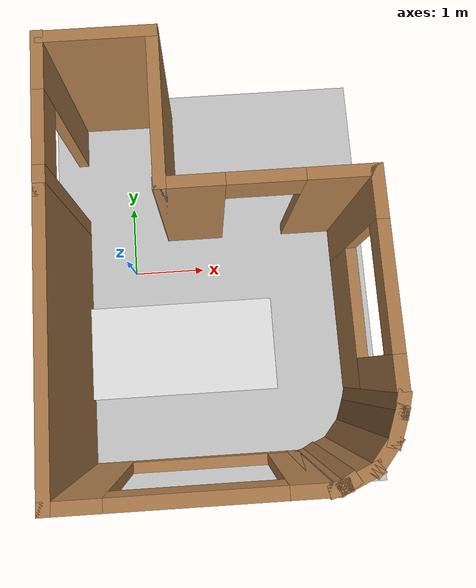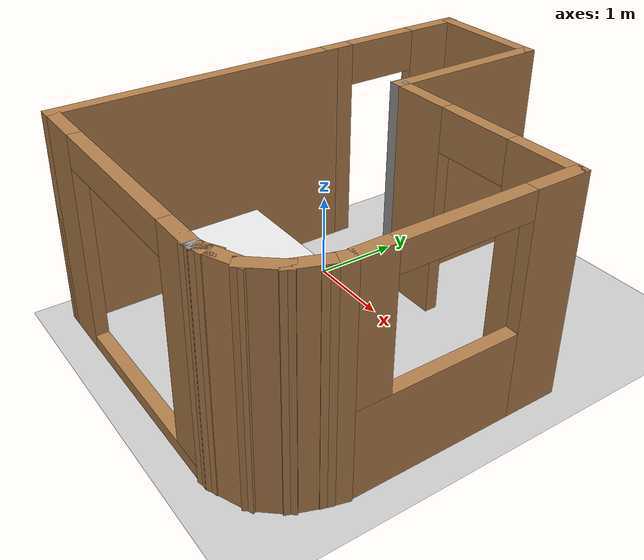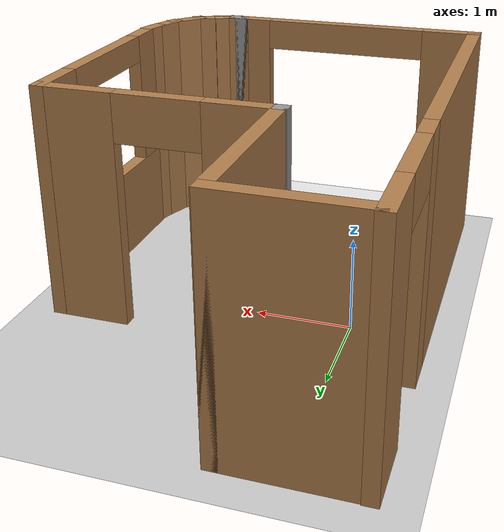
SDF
<sdf version="1.7">
 <world name="default">
  <light name="sun" type="directional">
   <pose>0 0 10 0 -0 0</pose>
   <diffuse>0.8 0.8 0.8 1</diffuse>
   <specular>0.2 0.2 0.2 1</specular>
   <attenuation>
    <range>1000</range>
    <constant>0.9</constant>
    <linear>0.01</linear>
    <quadratic>0.001</quadratic>
   </attenuation>
   <direction>-0.5 0.1 -0.9</direction>
   <spot><inner_angle>0</inner_angle><outer_angle>0</outer_angle><falloff>0</falloff></spot>
  </light>
  <model name="ground_plane">
   <static>1</static>
   <link name="link">
    <collision name="collision">
     <geometry><plane><normal>0 0 1</normal><size>100 100</size></plane></geometry>
     <surface>
      <contact><collide_bitmask>65535</collide_bitmask></contact>
      <friction><ode><mu>100</mu><mu2>50</mu2></ode></friction>
     </surface>
    </collision>
    <visual name="visual">
     <cast_shadows>0</cast_shadows>
     <geometry><plane><normal>0 0 1</normal><size>100 100</size></plane></geometry>
     <material>
      <script><uri>file://media/materials/scripts/gazebo.material</uri><name>Gazebo/Grey</name></script>
     </material>
    </visual>
   </link>
  </model>
  <gravity>0 0 -9.8</gravity>
  <magnetic_field>6e-06 2.3e-05 -4.2e-05</magnetic_field>
  <atmosphere type="adiabatic"/>
  <physics type="ode">
   <max_step_size>0.001</max_step_size>
   <real_time_factor>1</real_time_factor>
   <real_time_update_rate>1000</real_time_update_rate>
  </physics>
  <scene><ambient>0.4 0.4 0.4 1</ambient><background>0.7 0.7 0.7 1</background><shadows>1</shadows></scene>
  <spherical_coordinates>
   <surface_model>EARTH_WGS84</surface_model>
   <latitude_deg>0</latitude_deg>
   <longitude_deg>0</longitude_deg>
   <elevation>0</elevation>
   <heading_deg>0</heading_deg>
  </spherical_coordinates>
  <model name="hardwareroom">
   <pose>1.14273 0.26414 0 0 -0 0</pose>
   <link name="Wall_1">
    <collision name="Wall_1_Collision">
     <geometry><box><size>1.42085 0.15 2.5</size></box></geometry>
     <pose>0 0 1.25 0 -0 0</pose>
    </collision>
    <visual name="Wall_1_Visual">
     <pose>0 0 1.25 0 -0 0</pose>
     <geometry><box><size>1.42085 0.15 2.5</size></box></geometry>
     <material>
      <script><uri>file://media/materials/scripts/gazebo.material</uri><name>Gazebo/Wood</name></script>
      <ambient>1 1 1 1</ambient>
     </material>
     <meta><layer>0</layer></meta>
    </visual>
    <pose>-1.20151 2.14616 0 0 -0 0</pose>
   </link>
   <link name="Wall_18">
    <collision name="Wall_18_Collision">
     <geometry><box><size>0.15 0.15 2.5</size></box></geometry>
     <pose>0 0 1.25 0 -0 0</pose>
    </collision>
    <visual name="Wall_18_Visual">
     <pose>0 0 1.25 0 -0 0</pose>
     <geometry><box><size>0.15 0.15 2.5</size></box></geometry>
     <material>
      <script><uri>file://media/materials/scripts/gazebo.material</uri><name>Gazebo/Grey</name></script>
      <ambient>1 1 1 1</ambient>
     </material>
     <meta><layer>0</layer></meta>
    </visual>
    <pose>-0.566086 0.296158 0 0 -0 0</pose>
   </link>
   <link name="Wall_2">
    <collision name="Wall_2_Collision">
     <geometry><box><size>2 0.15 2.5</size></box></geometry>
     <pose>0 0 1.25 0 -0 0</pose>
    </collision>
    <visual name="Wall_2_Visual">
     <pose>0 0 1.25 0 -0 0</pose>
     <geometry><box><size>2 0.15 2.5</size></box></geometry>
     <material>
      <script><uri>file://media/materials/scripts/gazebo.material</uri><name>Gazebo/Wood</name></script>
      <ambient>1 1 1 1</ambient>
     </material>
     <meta><layer>0</layer></meta>
    </visual>
    <pose>-0.557291 1.22116 0 0 -0 -1.5708</pose>
   </link>
   <link name="Wall_20">
    <pose>0.652888 0.296158 0 0 -0 0</pose>
    <visual name="Wall_20_Visual_0">
     <pose>-0.879506 0 1.25 0 -0 0</pose>
     <geometry><box><size>0.811346 0.15 2.5</size></box></geometry>
     <material>
      <script><uri>file://media/materials/scripts/gazebo.material</uri><name>Gazebo/Wood</name></script>
      <ambient>1 1 1 1</ambient>
     </material>
     <meta><layer>0</layer></meta>
    </visual>
    <collision name="Wall_20_Collision_0">
     <geometry><box><size>0.811346 0.15 2.5</size></box></geometry>
     <pose>-0.879506 0 1.25 0 -0 0</pose>
    </collision>
    <visual name="Wall_20_Visual_1">
     <pose>0.855673 0 1.25 0 -0 0</pose>
     <geometry><box><size>0.859012 0.15 2.5</size></box></geometry>
     <material>
      <script><uri>file://media/materials/scripts/gazebo.material</uri><name>Gazebo/Wood</name></script>
      <ambient>1 1 1 1</ambient>
     </material>
     <meta><layer>0</layer></meta>
    </visual>
    <collision name="Wall_20_Collision_1">
     <geometry><box><size>0.859012 0.15 2.5</size></box></geometry>
     <pose>0.855673 0 1.25 0 -0 0</pose>
    </collision>
    <visual name="Wall_20_Visual_2">
     <pose>-0.023833 0 2.25 0 -0 0</pose>
     <geometry><box><size>0.9 0.15 0.5</size></box></geometry>
     <material>
      <script><uri>file://media/materials/scripts/gazebo.material</uri><name>Gazebo/Wood</name></script>
      <ambient>1 1 1 1</ambient>
     </material>
     <meta><layer>0</layer></meta>
    </visual>
    <collision name="Wall_20_Collision_2">
     <geometry><box><size>0.9 0.15 0.5</size></box></geometry>
     <pose>-0.023833 0 2.25 0 -0 0</pose>
    </collision>
   </link>
   <link name="Wall_22">
    <collision name="Wall_22_Collision">
     <geometry><box><size>3.5 0.15 2.5</size></box></geometry>
     <pose>0 0 1.25 0 -0 0</pose>
    </collision>
    <visual name="Wall_22_Visual">
     <pose>0 0 1.25 0 -0 0</pose>
     <geometry><box><size>3.5 0.15 2.5</size></box></geometry>
     <material>
      <script><uri>file://media/materials/scripts/gazebo.material</uri><name>Gazebo/Wood</name></script>
      <ambient>1 1 1 1</ambient>
     </material>
     <meta><layer>0</layer></meta>
    </visual>
    <pose>-1.88807 -1.3693 0 0 -0 -1.5708</pose>
   </link>
   <link name="Wall_23">
    <pose>-0.463066 -3.0443 0 0 -0 0</pose>
    <visual name="Wall_23_Visual_0">
     <pose>-1.16393 0 1.25 0 -0 0</pose>
     <geometry><box><size>0.672133 0.15 2.5</size></box></geometry>
     <material>
      <script><uri>file://media/materials/scripts/gazebo.material</uri><name>Gazebo/Wood</name></script>
      <ambient>1 1 1 1</ambient>
     </material>
     <meta><layer>0</layer></meta>
    </visual>
    <collision name="Wall_23_Collision_0">
     <geometry><box><size>0.672133 0.15 2.5</size></box></geometry>
     <pose>-1.16393 0 1.25 0 -0 0</pose>
    </collision>
    <visual name="Wall_23_Visual_1">
     <pose>0.336066 0 0.075 0 -0 0</pose>
     <geometry><box><size>2.32787 0.15 0.15</size></box></geometry>
     <material>
      <script><uri>file://media/materials/scripts/gazebo.material</uri><name>Gazebo/Wood</name></script>
      <ambient>1 1 1 1</ambient>
     </material>
     <meta><layer>0</layer></meta>
    </visual>
    <collision name="Wall_23_Collision_1">
     <geometry><box><size>2.32787 0.15 0.15</size></box></geometry>
     <pose>0.336066 0 0.075 0 -0 0</pose>
    </collision>
    <visual name="Wall_23_Visual_2">
     <pose>1.28107 0 1.325 0 -0 0</pose>
     <geometry><box><size>0.437867 0.15 2.35</size></box></geometry>
     <material>
      <script><uri>file://media/materials/scripts/gazebo.material</uri><name>Gazebo/Wood</name></script>
      <ambient>1 1 1 1</ambient>
     </material>
     <meta><layer>0</layer></meta>
    </visual>
    <collision name="Wall_23_Collision_2">
     <geometry><box><size>0.437867 0.15 2.35</size></box></geometry>
     <pose>1.28107 0 1.325 0 -0 0</pose>
    </collision>
    <visual name="Wall_23_Visual_3">
     <pose>0.117133 0 2.325 0 -0 0</pose>
     <geometry><box><size>1.89 0.15 0.35</size></box></geometry>
     <material>
      <script><uri>file://media/materials/scripts/gazebo.material</uri><name>Gazebo/Wood</name></script>
      <ambient>1 1 1 1</ambient>
     </material>
     <meta><layer>0</layer></meta>
    </visual>
    <collision name="Wall_23_Collision_3">
     <geometry><box><size>1.89 0.15 0.35</size></box></geometry>
     <pose>0.117133 0 2.325 0 -0 0</pose>
    </collision>
   </link>
   <link name="Wall_26">
    <collision name="Wall_26_Collision">
     <geometry><box><size>0.25 0.15 2.5</size></box></geometry>
     <pose>0 0 1.25 0 -0 0</pose>
    </collision>
    <visual name="Wall_26_Visual">
     <pose>0 0 1.25 0 -0 0</pose>
     <geometry><box><size>0.25 0.15 2.5</size></box></geometry>
     <material>
      <script><uri>file://media/materials/scripts/gazebo.material</uri><name>Gazebo/Grey</name></script>
      <ambient>1 1 1 1</ambient>
     </material>
     <meta><layer>0</layer></meta>
    </visual>
    <pose>1.01193 -3.0443 0 0 -0 0</pose>
   </link>
   <link name="Wall_27">
    <collision name="Wall_27_Collision">
     <geometry><box><size>0.25 0.15 2.5</size></box></geometry>
     <pose>0 0 1.25 0 -0 0</pose>
    </collision>
    <visual name="Wall_27_Visual">
     <pose>0 0 1.25 0 -0 0</pose>
     <geometry><box><size>0.25 0.15 2.5</size></box></geometry>
     <material>
      <script><uri>file://media/materials/scripts/gazebo.material</uri><name>Gazebo/Wood</name></script>
      <ambient>1 1 1 1</ambient>
     </material>
     <meta><layer>0</layer></meta>
    </visual>
    <pose>1.01193 -3.0443 0 0 -0 3.14159</pose>
   </link>
   <link name="Wall_29">
    <collision name="Wall_29_Collision">
     <geometry><box><size>0.25 0.15 2.5</size></box></geometry>
     <pose>0 0 1.25 0 -0 0</pose>
    </collision>
    <visual name="Wall_29_Visual">
     <pose>0 0 1.25 0 -0 0</pose>
     <geometry><box><size>0.25 0.15 2.5</size></box></geometry>
     <material>
      <script><uri>file://media/materials/scripts/gazebo.material</uri><name>Gazebo/Wood</name></script>
      <ambient>1 1 1 1</ambient>
     </material>
     <meta><layer>0</layer></meta>
    </visual>
    <pose>1.11023 -3.03136 0 0 -0 0.261799</pose>
   </link>
   <link name="Wall_33">
    <collision name="Wall_33_Collision">
     <geometry><box><size>0.25 0.15 2.5</size></box></geometry>
     <pose>0 0 1.25 0 -0 0</pose>
    </collision>
    <visual name="Wall_33_Visual">
     <pose>0 0 1.25 0 -0 0</pose>
     <geometry><box><size>0.25 0.15 2.5</size></box></geometry>
     <material>
      <script><uri>file://media/materials/scripts/gazebo.material</uri><name>Gazebo/Wood</name></script>
      <ambient>1 1 1 1</ambient>
     </material>
     <meta><layer>0</layer></meta>
    </visual>
    <pose>1.20183 -2.99342 0 0 -0 0.523599</pose>
   </link>
   <link name="Wall_37">
    <collision name="Wall_37_Collision">
     <geometry><box><size>0.522094 0.15 2.5</size></box></geometry>
     <pose>0 0 1.25 0 -0 0</pose>
    </collision>
    <visual name="Wall_37_Visual">
     <pose>0 0 1.25 0 -0 0</pose>
     <geometry><box><size>0.522094 0.15 2.5</size></box></geometry>
     <material>
      <script><uri>file://media/materials/scripts/gazebo.material</uri><name>Gazebo/Wood</name></script>
      <ambient>1 1 1 1</ambient>
     </material>
     <meta><layer>0</layer></meta>
    </visual>
    <pose>1.3296 -2.94529 0 0 -0 -2.73763</pose>
   </link>
   <link name="Wall_39">
    <collision name="Wall_39_Collision">
     <geometry><box><size>0.484614 0.15 2.5</size></box></geometry>
     <pose>0 0 1.25 0 -0 0</pose>
    </collision>
    <visual name="Wall_39_Visual">
     <pose>0 0 1.25 0 -0 0</pose>
     <geometry><box><size>0.484614 0.15 2.5</size></box></geometry>
     <material>
      <script><uri>file://media/materials/scripts/gazebo.material</uri><name>Gazebo/Wood</name></script>
      <ambient>1 1 1 1</ambient>
     </material>
     <meta><layer>0</layer></meta>
    </visual>
    <pose>1.60767 -2.74354 0 0 -0 -2.26471</pose>
   </link>
   <link name="Wall_41">
    <collision name="Wall_41_Collision">
     <geometry><box><size>0.457143 0.15 2.5</size></box></geometry>
     <pose>0 0 1.25 0 -0 0</pose>
    </collision>
    <visual name="Wall_41_Visual">
     <pose>0 0 1.25 0 -0 0</pose>
     <geometry><box><size>0.457143 0.15 2.5</size></box></geometry>
     <material>
      <script><uri>file://media/materials/scripts/gazebo.material</uri><name>Gazebo/Wood</name></script>
      <ambient>1 1 1 1</ambient>
     </material>
     <meta><layer>0</layer></meta>
    </visual>
    <pose>1.76871 -2.47118 0 0 -0 -1.93039</pose>
   </link>
   <link name="Wall_45">
    <collision name="Wall_45_Collision">
     <geometry><box><size>0.302406 0.15 2.5</size></box></geometry>
     <pose>0 0 1.25 0 -0 0</pose>
    </collision>
    <visual name="Wall_45_Visual">
     <pose>0 0 1.25 0 -0 0</pose>
     <geometry><box><size>0.302406 0.15 2.5</size></box></geometry>
     <material>
      <script><uri>file://media/materials/scripts/gazebo.material</uri><name>Gazebo/Wood</name></script>
      <ambient>1 1 1 1</ambient>
     </material>
     <meta><layer>0</layer></meta>
    </visual>
    <pose>1.84289 -2.25393 0 0 -0 1.30344</pose>
   </link>
   <link name="Wall_47">
    <pose>-1.88807 1.2307 0 0 -0 1.5708</pose>
    <visual name="Wall_47_Visual_0">
     <pose>-0.817654 0 1.25 0 -0 0</pose>
     <geometry><box><size>0.364692 0.15 2.5</size></box></geometry>
     <material>
      <script><uri>file://media/materials/scripts/gazebo.material</uri><name>Gazebo/Wood</name></script>
      <ambient>1 1 1 1</ambient>
     </material>
     <meta><layer>0</layer></meta>
    </visual>
    <collision name="Wall_47_Collision_0">
     <geometry><box><size>0.364692 0.15 2.5</size></box></geometry>
     <pose>-0.817654 0 1.25 0 -0 0</pose>
    </collision>
    <visual name="Wall_47_Visual_1">
     <pose>0.632346 0 1.25 0 -0 0</pose>
     <geometry><box><size>0.735308 0.15 2.5</size></box></geometry>
     <material>
      <script><uri>file://media/materials/scripts/gazebo.material</uri><name>Gazebo/Wood</name></script>
      <ambient>1 1 1 1</ambient>
     </material>
     <meta><layer>0</layer></meta>
    </visual>
    <collision name="Wall_47_Collision_1">
     <geometry><box><size>0.735308 0.15 2.5</size></box></geometry>
     <pose>0.632346 0 1.25 0 -0 0</pose>
    </collision>
    <visual name="Wall_47_Visual_2">
     <pose>-0.185308 0 2.25 0 -0 0</pose>
     <geometry><box><size>0.9 0.15 0.5</size></box></geometry>
     <material>
      <script><uri>file://media/materials/scripts/gazebo.material</uri><name>Gazebo/Wood</name></script>
      <ambient>1 1 1 1</ambient>
     </material>
     <meta><layer>0</layer></meta>
    </visual>
    <collision name="Wall_47_Collision_2">
     <geometry><box><size>0.9 0.15 0.5</size></box></geometry>
     <pose>-0.185308 0 2.25 0 -0 0</pose>
    </collision>
   </link>
   <link name="Wall_7">
    <pose>1.86307 -0.878842 0 0 -0 -1.5708</pose>
    <visual name="Wall_7_Visual_0">
     <pose>-0.930426 0 1.25 0 -0 0</pose>
     <geometry><box><size>0.639757 0.15 2.5</size></box></geometry>
     <material>
      <script><uri>file://media/materials/scripts/gazebo.material</uri><name>Gazebo/Wood</name></script>
      <ambient>1 1 1 1</ambient>
     </material>
     <meta><layer>0</layer></meta>
    </visual>
    <collision name="Wall_7_Collision_0">
     <geometry><box><size>0.639757 0.15 2.5</size></box></geometry>
     <pose>-0.930426 0 1.25 0 -0 0</pose>
    </collision>
    <visual name="Wall_7_Visual_1">
     <pose>0.319878 0 0.5 0 -0 0</pose>
     <geometry><box><size>1.86085 0.15 1</size></box></geometry>
     <material>
      <script><uri>file://media/materials/scripts/gazebo.material</uri><name>Gazebo/Wood</name></script>
      <ambient>1 1 1 1</ambient>
     </material>
     <meta><layer>0</layer></meta>
    </visual>
    <collision name="Wall_7_Collision_1">
     <geometry><box><size>1.86085 0.15 1</size></box></geometry>
     <pose>0.319878 0 0.5 0 -0 0</pose>
    </collision>
    <visual name="Wall_7_Visual_2">
     <pose>1.05338 0 1.75 0 -0 0</pose>
     <geometry><box><size>0.393852 0.15 1.5</size></box></geometry>
     <material>
      <script><uri>file://media/materials/scripts/gazebo.material</uri><name>Gazebo/Wood</name></script>
      <ambient>1 1 1 1</ambient>
     </material>
     <meta><layer>0</layer></meta>
    </visual>
    <collision name="Wall_7_Collision_2">
     <geometry><box><size>0.393852 0.15 1.5</size></box></geometry>
     <pose>1.05338 0 1.75 0 -0 0</pose>
    </collision>
    <visual name="Wall_7_Visual_3">
     <pose>0.122952 0 2.35 0 -0 0</pose>
     <geometry><box><size>1.467 0.15 0.3</size></box></geometry>
     <material>
      <script><uri>file://media/materials/scripts/gazebo.material</uri><name>Gazebo/Wood</name></script>
      <ambient>1 1 1 1</ambient>
     </material>
     <meta><layer>0</layer></meta>
    </visual>
    <collision name="Wall_7_Collision_3">
     <geometry><box><size>1.467 0.15 0.3</size></box></geometry>
     <pose>0.122952 0 2.35 0 -0 0</pose>
    </collision>
   </link>
   <static>1</static>
  </model>
  <model name="Table_office">
   <link name="link_0">
    <inertial>
     <mass>1</mass>
     <inertia>
      <ixx>0.166667</ixx>
      <ixy>0</ixy>
      <ixz>0</ixz>
      <iyy>0.166667</iyy>
      <iyz>0</iyz>
      <izz>0.166667</izz>
     </inertia>
    </inertial>
    <visual name="ModelPreview_3::link_0::visual_2">
     <pose>1 0 0 0 -0 0</pose>
     <geometry><box><size>0.05 0.8 0.75</size></box></geometry>
     <material>
      <lighting>1</lighting>
      <script><uri>file://media/materials/scripts/gazebo.material</uri><name>Gazebo/Black</name></script>
      <shader type="pixel"><normal_map>__default__</normal_map></shader>
      <ambient>0.3 0.3 0.3 1</ambient>
      <diffuse>0.7 0.7 0.7 1</diffuse>
      <specular>0.01 0.01 0.01 1</specular>
      <emissive>0 0 0 1</emissive>
     </material>
    </visual>
    <visual name="visual">
     <geometry><box><size>2 0.05 0.75</size></box></geometry>
     <material>
      <lighting>1</lighting>
      <script><uri>file://media/materials/scripts/gazebo.material</uri><name>Gazebo/Black</name></script>
      <shader type="pixel"><normal_map>__default__</normal_map></shader>
      <ambient>0.3 0.3 0.3 1</ambient>
      <diffuse>0.7 0.7 0.7 1</diffuse>
      <specular>0.01 0.01 0.01 1</specular>
      <emissive>0 0 0 1</emissive>
     </material>
    </visual>
    <visual name="ModelPreview_3::link_0::visual_3">
     <pose>-1 0 0 0 -0 0</pose>
     <geometry><box><size>0.05 0.8 0.75</size></box></geometry>
     <material>
      <lighting>1</lighting>
      <script><uri>file://media/materials/scripts/gazebo.material</uri><name>Gazebo/Black</name></script>
      <shader type="pixel"><normal_map>__default__</normal_map></shader>
      <ambient>0.3 0.3 0.3 1</ambient>
      <diffuse>0.7 0.7 0.7 1</diffuse>
      <specular>0.01 0.01 0.01 1</specular>
      <emissive>0 0 0 1</emissive>
     </material>
    </visual>
    <visual name="ModelPreview_3::link_0::visual_5">
     <pose>0 0 0.39 0 -0 0</pose>
     <geometry><box><size>2.44 1.21 0.05</size></box></geometry>
     <material>
      <lighting>1</lighting>
      <script><uri>file://media/materials/scripts/gazebo.material</uri><name>Gazebo/White</name></script>
      <shader type="pixel"><normal_map>__default__</normal_map></shader>
      <ambient>0.3 0.3 0.3 1</ambient>
      <diffuse>0.7 0.7 0.7 1</diffuse>
      <specular>0.01 0.01 0.01 1</specular>
      <emissive>0 0 0 1</emissive>
     </material>
    </visual>
    <collision name="collision_3">
     <pose>0 0 0.39 0 -0 0</pose>
     <geometry><box><size>2.44 1.21 0.05</size></box></geometry>
     <surface>
      <friction>
       <ode><mu>1</mu><mu2>1</mu2><fdir1>0 0 0</fdir1><slip1>0</slip1><slip2>0</slip2></ode>
       <torsional>
        <coefficient>1</coefficient>
        <patch_radius>0</patch_radius>
        <surface_radius>0</surface_radius>
        <use_patch_radius>1</use_patch_radius>
        <ode><slip>0</slip></ode>
       </torsional>
      </friction>
      <bounce><restitution_coefficient>0</restitution_coefficient><threshold>1e+06</threshold></bounce>
      <contact>
       <collide_without_contact>0</collide_without_contact>
       <collide_without_contact_bitmask>1</collide_without_contact_bitmask>
       <collide_bitmask>1</collide_bitmask>
       <ode>
        <soft_cfm>0</soft_cfm>
        <soft_erp>0.2</soft_erp>
        <kp>1e+13</kp>
        <kd>1</kd>
        <max_vel>0.01</max_vel>
        <min_depth>0</min_depth>
       </ode>
       <bullet>
        <split_impulse>1</split_impulse>
        <split_impulse_penetration_threshold>-0.01</split_impulse_penetration_threshold>
        <soft_cfm>0</soft_cfm>
        <soft_erp>0.2</soft_erp>
        <kp>1e+13</kp>
        <kd>1</kd>
       </bullet>
      </contact>
     </surface>
    </collision>
    <collision name="collision">
     <geometry><box><size>2 0.05 0.75</size></box></geometry>
     <surface>
      <friction>
       <ode><mu>1</mu><mu2>1</mu2><fdir1>0 0 0</fdir1><slip1>0</slip1><slip2>0</slip2></ode>
       <torsional>
        <coefficient>1</coefficient>
        <patch_radius>0</patch_radius>
        <surface_radius>0</surface_radius>
        <use_patch_radius>1</use_patch_radius>
        <ode><slip>0</slip></ode>
       </torsional>
      </friction>
      <bounce><restitution_coefficient>0</restitution_coefficient><threshold>1e+06</threshold></bounce>
      <contact>
       <collide_without_contact>0</collide_without_contact>
       <collide_without_contact_bitmask>1</collide_without_contact_bitmask>
       <collide_bitmask>1</collide_bitmask>
       <ode>
        <soft_cfm>0</soft_cfm>
        <soft_erp>0.2</soft_erp>
        <kp>1e+13</kp>
        <kd>1</kd>
        <max_vel>0.01</max_vel>
        <min_depth>0</min_depth>
       </ode>
       <bullet>
        <split_impulse>1</split_impulse>
        <split_impulse_penetration_threshold>-0.01</split_impulse_penetration_threshold>
        <soft_cfm>0</soft_cfm>
        <soft_erp>0.2</soft_erp>
        <kp>1e+13</kp>
        <kd>1</kd>
       </bullet>
      </contact>
     </surface>
    </collision>
    <collision name="collision_2">
     <pose>-1 0 0 0 -0 0</pose>
     <geometry><box><size>0.05 0.8 0.75</size></box></geometry>
     <surface>
      <friction>
       <ode><mu>1</mu><mu2>1</mu2><fdir1>0 0 0</fdir1><slip1>0</slip1><slip2>0</slip2></ode>
       <torsional>
        <coefficient>1</coefficient>
        <patch_radius>0</patch_radius>
        <surface_radius>0</surface_radius>
        <use_patch_radius>1</use_patch_radius>
        <ode><slip>0</slip></ode>
       </torsional>
      </friction>
      <bounce><restitution_coefficient>0</restitution_coefficient><threshold>1e+06</threshold></bounce>
      <contact>
       <collide_without_contact>0</collide_without_contact>
       <collide_without_contact_bitmask>1</collide_without_contact_bitmask>
       <collide_bitmask>1</collide_bitmask>
       <ode>
        <soft_cfm>0</soft_cfm>
        <soft_erp>0.2</soft_erp>
        <kp>1e+13</kp>
        <kd>1</kd>
        <max_vel>0.01</max_vel>
        <min_depth>0</min_depth>
       </ode>
       <bullet>
        <split_impulse>1</split_impulse>
        <split_impulse_penetration_threshold>-0.01</split_impulse_penetration_threshold>
        <soft_cfm>0</soft_cfm>
        <soft_erp>0.2</soft_erp>
        <kp>1e+13</kp>
        <kd>1</kd>
       </bullet>
      </contact>
     </surface>
    </collision>
    <collision name="collision_1">
     <pose>1 0 0 0 -0 0</pose>
     <geometry><box><size>0.05 0.8 0.75</size></box></geometry>
     <surface>
      <friction>
       <ode><mu>1</mu><mu2>1</mu2><fdir1>0 0 0</fdir1><slip1>0</slip1><slip2>0</slip2></ode>
       <torsional>
        <coefficient>1</coefficient>
        <patch_radius>0</patch_radius>
        <surface_radius>0</surface_radius>
        <use_patch_radius>1</use_patch_radius>
        <ode><slip>0</slip></ode>
       </torsional>
      </friction>
      <bounce><restitution_coefficient>0</restitution_coefficient><threshold>1e+06</threshold></bounce>
      <contact>
       <collide_without_contact>0</collide_without_contact>
       <collide_without_contact_bitmask>1</collide_without_contact_bitmask>
       <collide_bitmask>1</collide_bitmask>
       <ode>
        <soft_cfm>0</soft_cfm>
        <soft_erp>0.2</soft_erp>
        <kp>1e+13</kp>
        <kd>1</kd>
        <max_vel>0.01</max_vel>
        <min_depth>0</min_depth>
       </ode>
       <bullet>
        <split_impulse>1</split_impulse>
        <split_impulse_penetration_threshold>-0.01</split_impulse_penetration_threshold>
        <soft_cfm>0</soft_cfm>
        <soft_erp>0.2</soft_erp>
        <kp>1e+13</kp>
        <kd>1</kd>
       </bullet>
      </contact>
     </surface>
    </collision>
   </link>
   <static>0</static>
   <pose>0.672492 -1.18922 0.375 -1e-06 -0 -0</pose>
  </model>
 </world>
</sdf>
